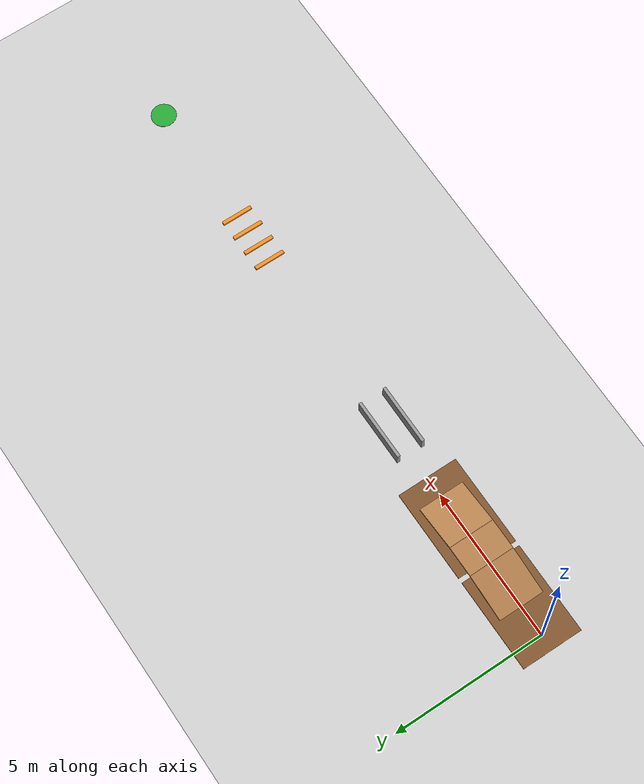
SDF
<?xml version="1.0" ?>
<!-- 由 omni_world.py 自动生成: scene=mixed seed=6 -->
<sdf version="1.5">
  <world name="mixed">
    <physics type="ode">
      <type>world</type>
      <max_step_size>0.001</max_step_size>
      <real_time_update_rate>1000</real_time_update_rate>
      <iters>500</iters>
    </physics>
    <include><uri>model://sun</uri></include>
    <include><uri>model://ground_plane</uri></include>
    <model name="ground_a">
      <static>true</static>
      <pose>1.000 0.000 -0.025 0.0000 0.0000 0.0000</pose>
      <link name="link">
        <collision name="collision">
          <geometry><box><size>3.000 2.000 0.050</size></box></geometry>
          <surface><friction><ode><mu>1.0</mu><mu2>1.0</mu2></ode></friction></surface>
        </collision>
        <visual name="visual">
          <geometry><box><size>3.000 2.000 0.050</size></box></geometry>
          <material><script><uri>file://media/materials/scripts/gazebo.material</uri>
            <name>Gazebo/Brown</name></script></material>
        </visual>
      </link>
    </model>
    <model name="ground_b">
      <static>true</static>
      <pose>4.160 0.000 -0.025 0.0000 0.0000 0.0000</pose>
      <link name="link">
        <collision name="collision">
          <geometry><box><size>3.000 2.000 0.050</size></box></geometry>
          <surface><friction><ode><mu>1.0</mu><mu2>1.0</mu2></ode></friction></surface>
        </collision>
        <visual name="visual">
          <geometry><box><size>3.000 2.000 0.050</size></box></geometry>
          <material><script><uri>file://media/materials/scripts/gazebo.material</uri>
            <name>Gazebo/Brown</name></script></material>
        </visual>
      </link>
    </model>
    <model name="goal">
      <static>true</static>
      <pose>4.160 0.000 0.005 0 0 0</pose>
      <link name="link">
        <visual name="visual">
          <geometry><cylinder><radius>0.400</radius><length>0.01</length></cylinder></geometry>
          <material><script><uri>file://media/materials/scripts/gazebo.material</uri>
            <name>Gazebo/Green</name></script></material>
        </visual>
      </link>
    </model>
    <model name="mx_wl_1">
      <static>true</static>
      <pose>7.500 0.425 0.250 0.0000 0.0000 0.0000</pose>
      <link name="link">
        <collision name="collision">
          <geometry><box><size>2.000 0.100 0.500</size></box></geometry>
          <surface><friction><ode><mu>1.0</mu><mu2>1.0</mu2></ode></friction></surface>
        </collision>
        <visual name="visual">
          <geometry><box><size>2.000 0.100 0.500</size></box></geometry>
          <material><script><uri>file://media/materials/scripts/gazebo.material</uri>
            <name>Gazebo/Grey</name></script></material>
        </visual>
      </link>
    </model>
    <model name="mx_wr_1">
      <static>true</static>
      <pose>7.500 -0.425 0.250 0.0000 0.0000 0.0000</pose>
      <link name="link">
        <collision name="collision">
          <geometry><box><size>2.000 0.100 0.500</size></box></geometry>
          <surface><friction><ode><mu>1.0</mu><mu2>1.0</mu2></ode></friction></surface>
        </collision>
        <visual name="visual">
          <geometry><box><size>2.000 0.100 0.500</size></box></geometry>
          <material><script><uri>file://media/materials/scripts/gazebo.material</uri>
            <name>Gazebo/Grey</name></script></material>
        </visual>
      </link>
    </model>
    <model name="ground_a">
      <static>true</static>
      <pose>1.000 0.000 -0.025 0.0000 0.0000 0.0000</pose>
      <link name="link">
        <collision name="collision">
          <geometry><box><size>3.000 2.000 0.050</size></box></geometry>
          <surface><friction><ode><mu>1.0</mu><mu2>1.0</mu2></ode></friction></surface>
        </collision>
        <visual name="visual">
          <geometry><box><size>3.000 2.000 0.050</size></box></geometry>
          <material><script><uri>file://media/materials/scripts/gazebo.material</uri>
            <name>Gazebo/Brown</name></script></material>
        </visual>
      </link>
    </model>
    <model name="ground_b">
      <static>true</static>
      <pose>4.160 0.000 -0.025 0.0000 0.0000 0.0000</pose>
      <link name="link">
        <collision name="collision">
          <geometry><box><size>3.000 2.000 0.050</size></box></geometry>
          <surface><friction><ode><mu>1.0</mu><mu2>1.0</mu2></ode></friction></surface>
        </collision>
        <visual name="visual">
          <geometry><box><size>3.000 2.000 0.050</size></box></geometry>
          <material><script><uri>file://media/materials/scripts/gazebo.material</uri>
            <name>Gazebo/Brown</name></script></material>
        </visual>
      </link>
    </model>
    <model name="goal">
      <static>true</static>
      <pose>4.160 0.000 0.005 0 0 0</pose>
      <link name="link">
        <visual name="visual">
          <geometry><cylinder><radius>0.400</radius><length>0.01</length></cylinder></geometry>
          <material><script><uri>file://media/materials/scripts/gazebo.material</uri>
            <name>Gazebo/Green</name></script></material>
        </visual>
      </link>
    </model>
    <model name="mx_bump_3_0">
      <static>true</static>
      <pose>14.000 0.000 0.033 0.0000 0.0000 0.0000</pose>
      <link name="link">
        <collision name="collision">
          <geometry><box><size>0.120 1.000 0.065</size></box></geometry>
          <surface><friction><ode><mu>1.0</mu><mu2>1.0</mu2></ode></friction></surface>
        </collision>
        <visual name="visual">
          <geometry><box><size>0.120 1.000 0.065</size></box></geometry>
          <material><script><uri>file://media/materials/scripts/gazebo.material</uri>
            <name>Gazebo/Orange</name></script></material>
        </visual>
      </link>
    </model>
    <model name="mx_bump_3_1">
      <static>true</static>
      <pose>14.600 0.000 0.033 0.0000 0.0000 0.0000</pose>
      <link name="link">
        <collision name="collision">
          <geometry><box><size>0.120 1.000 0.065</size></box></geometry>
          <surface><friction><ode><mu>1.0</mu><mu2>1.0</mu2></ode></friction></surface>
        </collision>
        <visual name="visual">
          <geometry><box><size>0.120 1.000 0.065</size></box></geometry>
          <material><script><uri>file://media/materials/scripts/gazebo.material</uri>
            <name>Gazebo/Orange</name></script></material>
        </visual>
      </link>
    </model>
    <model name="mx_bump_3_2">
      <static>true</static>
      <pose>15.200 0.000 0.033 0.0000 0.0000 0.0000</pose>
      <link name="link">
        <collision name="collision">
          <geometry><box><size>0.120 1.000 0.065</size></box></geometry>
          <surface><friction><ode><mu>1.0</mu><mu2>1.0</mu2></ode></friction></surface>
        </collision>
        <visual name="visual">
          <geometry><box><size>0.120 1.000 0.065</size></box></geometry>
          <material><script><uri>file://media/materials/scripts/gazebo.material</uri>
            <name>Gazebo/Orange</name></script></material>
        </visual>
      </link>
    </model>
    <model name="mx_bump_3_3">
      <static>true</static>
      <pose>15.800 0.000 0.033 0.0000 0.0000 0.0000</pose>
      <link name="link">
        <collision name="collision">
          <geometry><box><size>0.120 1.000 0.065</size></box></geometry>
          <surface><friction><ode><mu>1.0</mu><mu2>1.0</mu2></ode></friction></surface>
        </collision>
        <visual name="visual">
          <geometry><box><size>0.120 1.000 0.065</size></box></geometry>
          <material><script><uri>file://media/materials/scripts/gazebo.material</uri>
            <name>Gazebo/Orange</name></script></material>
        </visual>
      </link>
    </model>
    <model name="ramp_up">
      <static>true</static>
      <pose>1.739 0.000 0.155 0.0000 -0.1745 0.0000</pose>
      <link name="link">
        <collision name="collision">
          <geometry><box><size>1.500 1.500 0.050</size></box></geometry>
          <surface><friction><ode><mu>1.2</mu><mu2>1.2</mu2></ode></friction></surface>
        </collision>
        <visual name="visual">
          <geometry><box><size>1.500 1.500 0.050</size></box></geometry>
          <material><script><uri>file://media/materials/scripts/gazebo.material</uri>
            <name>Gazebo/Wood</name></script></material>
        </visual>
      </link>
    </model>
    <model name="platform">
      <static>true</static>
      <pose>2.977 0.000 0.285 0.0000 0.0000 0.0000</pose>
      <link name="link">
        <collision name="collision">
          <geometry><box><size>1.000 1.500 0.050</size></box></geometry>
          <surface><friction><ode><mu>1.2</mu><mu2>1.2</mu2></ode></friction></surface>
        </collision>
        <visual name="visual">
          <geometry><box><size>1.000 1.500 0.050</size></box></geometry>
          <material><script><uri>file://media/materials/scripts/gazebo.material</uri>
            <name>Gazebo/Wood</name></script></material>
        </visual>
      </link>
    </model>
    <model name="ramp_down">
      <static>true</static>
      <pose>4.216 0.000 0.155 0.0000 0.1745 0.0000</pose>
      <link name="link">
        <collision name="collision">
          <geometry><box><size>1.500 1.500 0.050</size></box></geometry>
          <surface><friction><ode><mu>1.2</mu><mu2>1.2</mu2></ode></friction></surface>
        </collision>
        <visual name="visual">
          <geometry><box><size>1.500 1.500 0.050</size></box></geometry>
          <material><script><uri>file://media/materials/scripts/gazebo.material</uri>
            <name>Gazebo/Wood</name></script></material>
        </visual>
      </link>
    </model>
    <model name="goal">
      <static>true</static>
      <pose>20.000 0.000 0.005 0 0 0</pose>
      <link name="link">
        <visual name="visual">
          <geometry><cylinder><radius>0.400</radius><length>0.01</length></cylinder></geometry>
          <material><script><uri>file://media/materials/scripts/gazebo.material</uri>
            <name>Gazebo/Green</name></script></material>
        </visual>
      </link>
    </model>

  </world>
</sdf>
